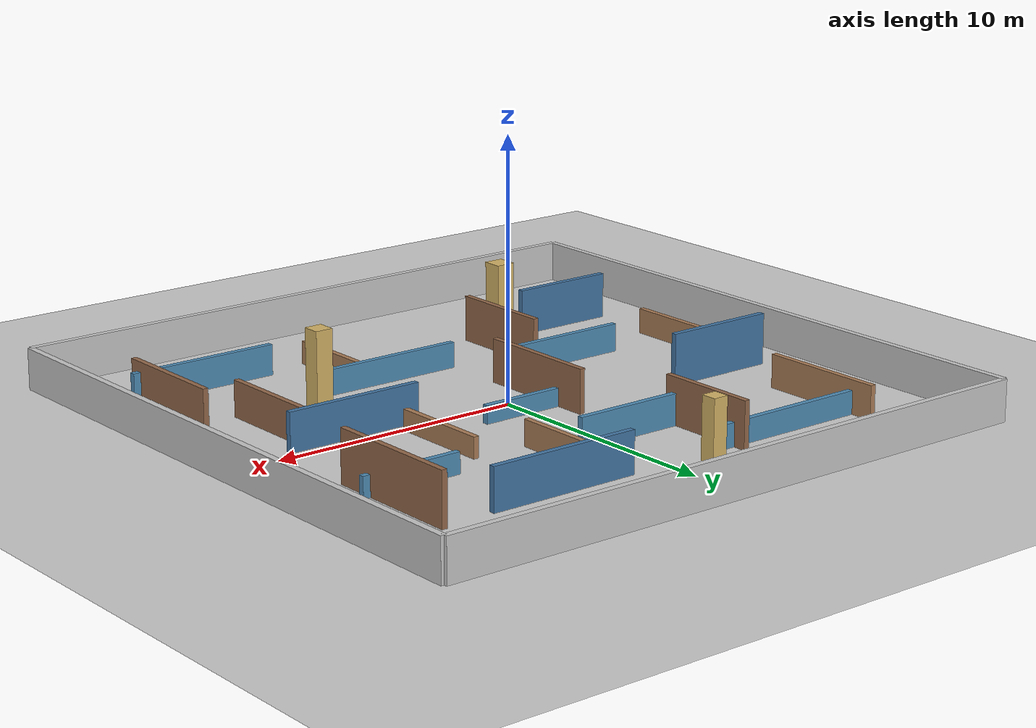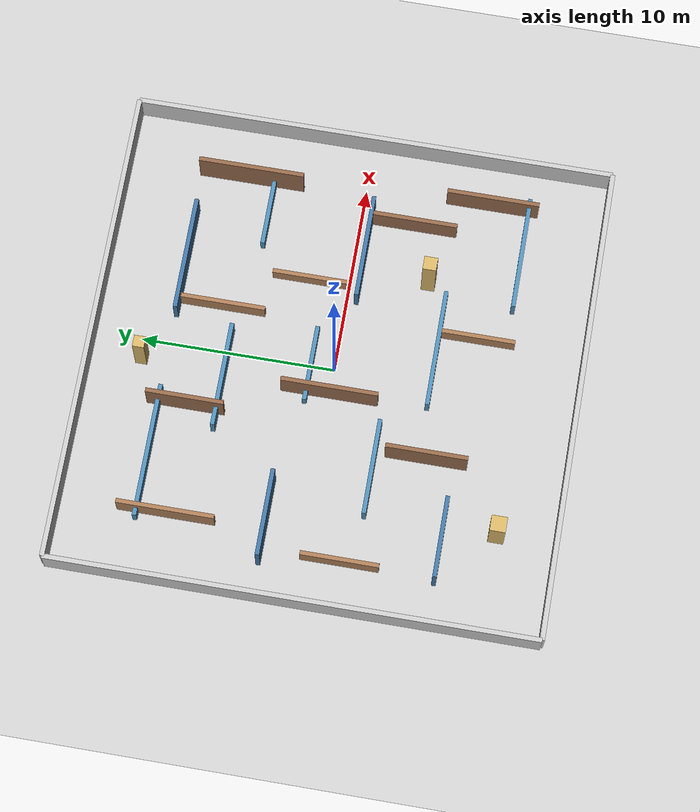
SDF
<sdf version='1.7'>
  <world name='maze_25'>
    <include>
      <uri>model://sun</uri>
    </include>
    <include>
      <uri>model://ground_plane</uri>
    </include>

    <physics type='ode'>
      <max_step_size>0.001</max_step_size>
      <real_time_factor>1</real_time_factor>
      <real_time_update_rate>1000</real_time_update_rate>
    </physics>

    <scene>
      <ambient>0.45 0.45 0.45 1</ambient>
      <background>0.75 0.78 0.82 1</background>
      <shadows>1</shadows>
    </scene>

    <model name='maze_walls'>
      <static>1</static>
      <link name='walls'>
        <collision name='wall_north_col'>
          <pose>0 12.5 0.8 0 0 0</pose>
          <geometry><box><size>25 0.25 1.6</size></box></geometry>
        </collision>
        <visual name='wall_north_vis'>
          <pose>0 12.5 0.8 0 0 0</pose>
          <geometry><box><size>25 0.25 1.6</size></box></geometry>
          <material><ambient>0.78 0.78 0.78 1</ambient><diffuse>0.78 0.78 0.78 1</diffuse></material>
        </visual>

        <collision name='wall_south_col'>
          <pose>0 -12.5 0.8 0 0 0</pose>
          <geometry><box><size>25 0.25 1.6</size></box></geometry>
        </collision>
        <visual name='wall_south_vis'>
          <pose>0 -12.5 0.8 0 0 0</pose>
          <geometry><box><size>25 0.25 1.6</size></box></geometry>
          <material><ambient>0.78 0.78 0.78 1</ambient><diffuse>0.78 0.78 0.78 1</diffuse></material>
        </visual>

        <collision name='wall_east_col'>
          <pose>12.5 0 0.8 0 0 0</pose>
          <geometry><box><size>0.25 25 1.6</size></box></geometry>
        </collision>
        <visual name='wall_east_vis'>
          <pose>12.5 0 0.8 0 0 0</pose>
          <geometry><box><size>0.25 25 1.6</size></box></geometry>
          <material><ambient>0.78 0.78 0.78 1</ambient><diffuse>0.78 0.78 0.78 1</diffuse></material>
        </visual>

        <collision name='wall_west_col'>
          <pose>-12.5 0 0.8 0 0 0</pose>
          <geometry><box><size>0.25 25 1.6</size></box></geometry>
        </collision>
        <visual name='wall_west_vis'>
          <pose>-12.5 0 0.8 0 0 0</pose>
          <geometry><box><size>0.25 25 1.6</size></box></geometry>
          <material><ambient>0.78 0.78 0.78 1</ambient><diffuse>0.78 0.78 0.78 1</diffuse></material>
        </visual>

        <collision name='wall_h1_col'>
          <pose>-6.0 8.5 0.45 0 0 0</pose>
          <geometry><box><size>7.0 0.22 0.9</size></box></geometry>
        </collision>
        <visual name='wall_h1_vis'>
          <pose>-6.0 8.5 0.45 0 0 0</pose>
          <geometry><box><size>7.0 0.22 0.9</size></box></geometry>
          <material><ambient>0.31 0.55 0.71 1</ambient><diffuse>0.31 0.55 0.71 1</diffuse></material>
        </visual>

        <collision name='wall_h2_col'>
          <pose>4.5 8.5 0.8 0 0 0</pose>
          <geometry><box><size>6.0 0.22 1.6</size></box></geometry>
        </collision>
        <visual name='wall_h2_vis'>
          <pose>4.5 8.5 0.8 0 0 0</pose>
          <geometry><box><size>6.0 0.22 1.6</size></box></geometry>
          <material><ambient>0.26 0.46 0.64 1</ambient><diffuse>0.26 0.46 0.64 1</diffuse></material>
        </visual>

        <collision name='wall_h3_col'>
          <pose>-1.5 5.5 0.6 0 0 0</pose>
          <geometry><box><size>5.5 0.22 1.2</size></box></geometry>
        </collision>
        <visual name='wall_h3_vis'>
          <pose>-1.5 5.5 0.6 0 0 0</pose>
          <geometry><box><size>5.5 0.22 1.2</size></box></geometry>
          <material><ambient>0.31 0.55 0.71 1</ambient><diffuse>0.31 0.55 0.71 1</diffuse></material>
        </visual>

        <collision name='wall_h4_col'>
          <pose>8.0 4.8 0.4 0 0 0</pose>
          <geometry><box><size>4.0 0.22 0.8</size></box></geometry>
        </collision>
        <visual name='wall_h4_vis'>
          <pose>8.0 4.8 0.4 0 0 0</pose>
          <geometry><box><size>4.0 0.22 0.8</size></box></geometry>
          <material><ambient>0.31 0.55 0.71 1</ambient><diffuse>0.31 0.55 0.71 1</diffuse></material>
        </visual>

        <collision name='wall_h5_col'>
          <pose>-8.5 2.0 1.0 0 0 0</pose>
          <geometry><box><size>4.5 0.22 2.0</size></box></geometry>
        </collision>
        <visual name='wall_h5_vis'>
          <pose>-8.5 2.0 1.0 0 0 0</pose>
          <geometry><box><size>4.5 0.22 2.0</size></box></geometry>
          <material><ambient>0.26 0.46 0.64 1</ambient><diffuse>0.26 0.46 0.64 1</diffuse></material>
        </visual>

        <collision name='wall_h6_col'>
          <pose>0.0 1.2 0.35 0 0 0</pose>
          <geometry><box><size>4.0 0.22 0.7</size></box></geometry>
        </collision>
        <visual name='wall_h6_vis'>
          <pose>0.0 1.2 0.35 0 0 0</pose>
          <geometry><box><size>4.0 0.22 0.7</size></box></geometry>
          <material><ambient>0.31 0.55 0.71 1</ambient><diffuse>0.31 0.55 0.71 1</diffuse></material>
        </visual>

        <collision name='wall_h7_col'>
          <pose>6.5 -0.5 0.75 0 0 0</pose>
          <geometry><box><size>5.5 0.22 1.5</size></box></geometry>
        </collision>
        <visual name='wall_h7_vis'>
          <pose>6.5 -0.5 0.75 0 0 0</pose>
          <geometry><box><size>5.5 0.22 1.5</size></box></geometry>
          <material><ambient>0.26 0.46 0.64 1</ambient><diffuse>0.26 0.46 0.64 1</diffuse></material>
        </visual>

        <collision name='wall_h8_col'>
          <pose>-5.0 -2.8 0.55 0 0 0</pose>
          <geometry><box><size>5.0 0.22 1.1</size></box></geometry>
        </collision>
        <visual name='wall_h8_vis'>
          <pose>-5.0 -2.8 0.55 0 0 0</pose>
          <geometry><box><size>5.0 0.22 1.1</size></box></geometry>
          <material><ambient>0.31 0.55 0.71 1</ambient><diffuse>0.31 0.55 0.71 1</diffuse></material>
        </visual>

        <collision name='wall_h9_col'>
          <pose>1.8 -5.0 0.5 0 0 0</pose>
          <geometry><box><size>6.2 0.22 1.0</size></box></geometry>
        </collision>
        <visual name='wall_h9_vis'>
          <pose>1.8 -5.0 0.5 0 0 0</pose>
          <geometry><box><size>6.2 0.22 1.0</size></box></geometry>
          <material><ambient>0.31 0.55 0.71 1</ambient><diffuse>0.31 0.55 0.71 1</diffuse></material>
        </visual>

        <collision name='wall_h10_col'>
          <pose>-8.2 -6.8 0.9 0 0 0</pose>
          <geometry><box><size>4.2 0.22 1.8</size></box></geometry>
        </collision>
        <visual name='wall_h10_vis'>
          <pose>-8.2 -6.8 0.9 0 0 0</pose>
          <geometry><box><size>4.2 0.22 1.8</size></box></geometry>
          <material><ambient>0.26 0.46 0.64 1</ambient><diffuse>0.26 0.46 0.64 1</diffuse></material>
        </visual>

        <collision name='wall_h11_col'>
          <pose>7.6 -8.5 0.6 0 0 0</pose>
          <geometry><box><size>6.0 0.22 1.2</size></box></geometry>
        </collision>
        <visual name='wall_h11_vis'>
          <pose>7.6 -8.5 0.6 0 0 0</pose>
          <geometry><box><size>6.0 0.22 1.2</size></box></geometry>
          <material><ambient>0.31 0.55 0.71 1</ambient><diffuse>0.31 0.55 0.71 1</diffuse></material>
        </visual>

        <collision name='wall_v1_col'>
          <pose>-9.0 7.0 0.65 0 0 1.5707963</pose>
          <geometry><box><size>5.0 0.22 1.3</size></box></geometry>
        </collision>
        <visual name='wall_v1_vis'>
          <pose>-9.0 7.0 0.65 0 0 1.5707963</pose>
          <geometry><box><size>5.0 0.22 1.3</size></box></geometry>
          <material><ambient>0.67 0.49 0.34 1</ambient><diffuse>0.67 0.49 0.34 1</diffuse></material>
        </visual>

        <collision name='wall_v2_col'>
          <pose>-3.2 7.1 0.9 0 0 1.5707963</pose>
          <geometry><box><size>4.0 0.22 1.8</size></box></geometry>
        </collision>
        <visual name='wall_v2_vis'>
          <pose>-3.2 7.1 0.9 0 0 1.5707963</pose>
          <geometry><box><size>4.0 0.22 1.8</size></box></geometry>
          <material><ambient>0.58 0.41 0.29 1</ambient><diffuse>0.58 0.41 0.29 1</diffuse></material>
        </visual>

        <collision name='wall_v3_col'>
          <pose>2.4 6.2 0.5 0 0 1.5707963</pose>
          <geometry><box><size>4.4 0.22 1.0</size></box></geometry>
        </collision>
        <visual name='wall_v3_vis'>
          <pose>2.4 6.2 0.5 0 0 1.5707963</pose>
          <geometry><box><size>4.4 0.22 1.0</size></box></geometry>
          <material><ambient>0.67 0.49 0.34 1</ambient><diffuse>0.67 0.49 0.34 1</diffuse></material>
        </visual>

        <collision name='wall_v4_col'>
          <pose>9.6 6.0 1.0 0 0 1.5707963</pose>
          <geometry><box><size>5.5 0.22 2.0</size></box></geometry>
        </collision>
        <visual name='wall_v4_vis'>
          <pose>9.6 6.0 1.0 0 0 1.5707963</pose>
          <geometry><box><size>5.5 0.22 2.0</size></box></geometry>
          <material><ambient>0.58 0.41 0.29 1</ambient><diffuse>0.58 0.41 0.29 1</diffuse></material>
        </visual>

        <collision name='wall_v5_col'>
          <pose>4.6 2.0 0.4 0 0 1.5707963</pose>
          <geometry><box><size>4.0 0.22 0.8</size></box></geometry>
        </collision>
        <visual name='wall_v5_vis'>
          <pose>4.6 2.0 0.4 0 0 1.5707963</pose>
          <geometry><box><size>4.0 0.22 0.8</size></box></geometry>
          <material><ambient>0.67 0.49 0.34 1</ambient><diffuse>0.67 0.49 0.34 1</diffuse></material>
        </visual>

        <collision name='wall_v6_col'>
          <pose>-1.4 0.0 0.85 0 0 1.5707963</pose>
          <geometry><box><size>5.0 0.22 1.7</size></box></geometry>
        </collision>
        <visual name='wall_v6_vis'>
          <pose>-1.4 0.0 0.85 0 0 1.5707963</pose>
          <geometry><box><size>5.0 0.22 1.7</size></box></geometry>
          <material><ambient>0.58 0.41 0.29 1</ambient><diffuse>0.58 0.41 0.29 1</diffuse></material>
        </visual>

        <collision name='wall_v7_col'>
          <pose>-10.0 -2.0 0.5 0 0 1.5707963</pose>
          <geometry><box><size>4.0 0.22 1.0</size></box></geometry>
        </collision>
        <visual name='wall_v7_vis'>
          <pose>-10.0 -2.0 0.5 0 0 1.5707963</pose>
          <geometry><box><size>4.0 0.22 1.0</size></box></geometry>
          <material><ambient>0.67 0.49 0.34 1</ambient><diffuse>0.67 0.49 0.34 1</diffuse></material>
        </visual>

        <collision name='wall_v8_col'>
          <pose>8.4 -2.7 0.7 0 0 1.5707963</pose>
          <geometry><box><size>4.6 0.22 1.4</size></box></geometry>
        </collision>
        <visual name='wall_v8_vis'>
          <pose>8.4 -2.7 0.7 0 0 1.5707963</pose>
          <geometry><box><size>4.6 0.22 1.4</size></box></geometry>
          <material><ambient>0.58 0.41 0.29 1</ambient><diffuse>0.58 0.41 0.29 1</diffuse></material>
        </visual>

        <collision name='wall_v9_col'>
          <pose>-4.0 -5.4 0.9 0 0 1.5707963</pose>
          <geometry><box><size>4.2 0.22 1.8</size></box></geometry>
        </collision>
        <visual name='wall_v9_vis'>
          <pose>-4.0 -5.4 0.9 0 0 1.5707963</pose>
          <geometry><box><size>4.2 0.22 1.8</size></box></geometry>
          <material><ambient>0.58 0.41 0.29 1</ambient><diffuse>0.58 0.41 0.29 1</diffuse></material>
        </visual>

        <collision name='wall_v10_col'>
          <pose>2.8 -7.0 0.45 0 0 1.5707963</pose>
          <geometry><box><size>3.8 0.22 0.9</size></box></geometry>
        </collision>
        <visual name='wall_v10_vis'>
          <pose>2.8 -7.0 0.45 0 0 1.5707963</pose>
          <geometry><box><size>3.8 0.22 0.9</size></box></geometry>
          <material><ambient>0.67 0.49 0.34 1</ambient><diffuse>0.67 0.49 0.34 1</diffuse></material>
        </visual>

        <collision name='wall_v11_col'>
          <pose>10.2 -6.6 0.8 0 0 1.5707963</pose>
          <geometry><box><size>4.8 0.22 1.6</size></box></geometry>
        </collision>
        <visual name='wall_v11_vis'>
          <pose>10.2 -6.6 0.8 0 0 1.5707963</pose>
          <geometry><box><size>4.8 0.22 1.6</size></box></geometry>
          <material><ambient>0.58 0.41 0.29 1</ambient><diffuse>0.58 0.41 0.29 1</diffuse></material>
        </visual>

        <collision name='pillar_a_col'>
          <pose>-1.0 9.8 1.3 0 0 0</pose>
          <geometry><box><size>0.6 0.6 2.6</size></box></geometry>
        </collision>
        <visual name='pillar_a_vis'>
          <pose>-1.0 9.8 1.3 0 0 0</pose>
          <geometry><box><size>0.6 0.6 2.6</size></box></geometry>
          <material><ambient>0.83 0.70 0.40 1</ambient><diffuse>0.83 0.70 0.40 1</diffuse></material>
        </visual>

        <collision name='pillar_b_col'>
          <pose>5.5 -4.0 1.5 0 0 0</pose>
          <geometry><box><size>0.7 0.7 3.0</size></box></geometry>
        </collision>
        <visual name='pillar_b_vis'>
          <pose>5.5 -4.0 1.5 0 0 0</pose>
          <geometry><box><size>0.7 0.7 3.0</size></box></geometry>
          <material><ambient>0.83 0.70 0.40 1</ambient><diffuse>0.83 0.70 0.40 1</diffuse></material>
        </visual>

        <collision name='pillar_c_col'>
          <pose>-7.2 -9.5 1.1 0 0 0</pose>
          <geometry><box><size>0.8 0.8 2.2</size></box></geometry>
        </collision>
        <visual name='pillar_c_vis'>
          <pose>-7.2 -9.5 1.1 0 0 0</pose>
          <geometry><box><size>0.8 0.8 2.2</size></box></geometry>
          <material><ambient>0.83 0.70 0.40 1</ambient><diffuse>0.83 0.70 0.40 1</diffuse></material>
        </visual>
      </link>
    </model>

    <gui fullscreen='0'>
      <camera name='user_camera'>
        <pose>10 -18 16 0.86 0 0.62</pose>
        <view_controller>orbit</view_controller>
        <projection_type>perspective</projection_type>
      </camera>
    </gui>
  </world>
</sdf>
